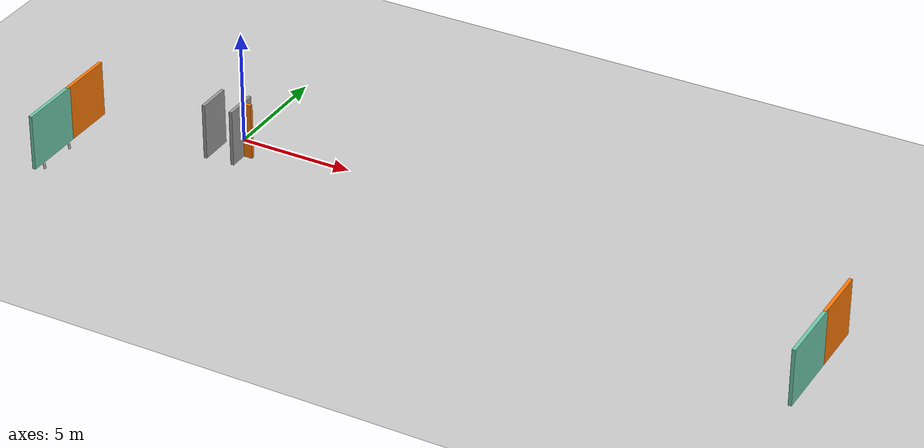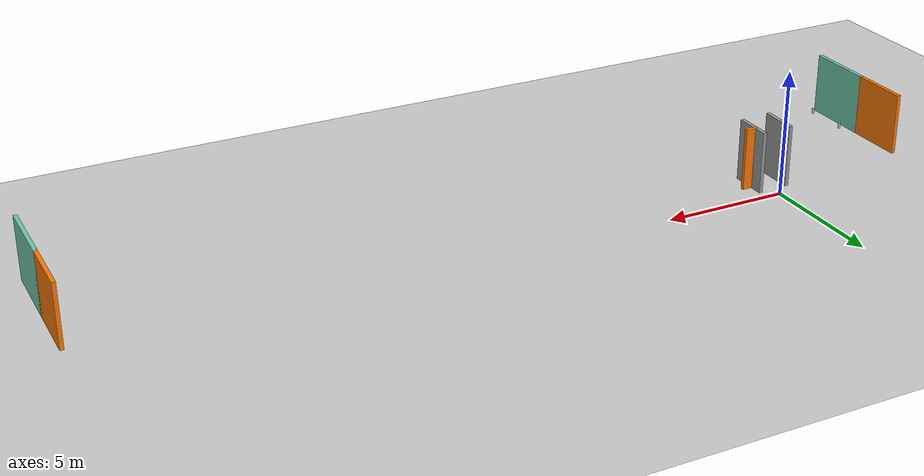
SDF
<sdf version="1.6">
 <world name="default">
  <model name="ground_plane">
   <static>1</static>
   <link name="link">
    <collision name="collision">
     <geometry><plane><normal>0 0 1</normal><size>100 100</size></plane></geometry>
     <surface>
      <contact><collide_bitmask>65535</collide_bitmask></contact>
      <friction><ode><mu>100</mu><mu2>50</mu2></ode></friction>
     </surface>
    </collision>
    <visual name="visual">
     <cast_shadows>0</cast_shadows>
     <geometry><plane><normal>0 0 1</normal><size>100 100</size></plane></geometry>
     <material>
      <script><uri>file://media/materials/scripts/gazebo.material</uri><name>Gazebo/Grey</name></script>
     </material>
    </visual>
   </link>
  </model>
  <model name="hhh">
   <pose>0.165 -1.21 0 0 -0 0</pose>
   <link name="Wall_0">
    <collision name="Wall_0_Collision">
     <geometry><box><size>1.5 0.15 2.5</size></box></geometry>
     <pose>0 0 1.25 0 -0 0</pose>
    </collision>
    <visual name="Wall_0_Visual">
     <pose>0 0 1.25 0 -0 0</pose>
     <geometry><box><size>1.5 0.15 2.5</size></box></geometry>
     <material>
      <script><uri>file://media/materials/scripts/gazebo.material</uri><name>Gazebo/Grey</name></script>
      <ambient>1 1 1 1</ambient>
     </material>
     <meta><layer>0</layer></meta>
    </visual>
    <pose>0.435 0.035 0 0 -0 -1.5708</pose>
   </link>
   <link name="Wall_2">
    <collision name="Wall_2_Collision">
     <geometry><box><size>0.5 0.15 2.5</size></box></geometry>
     <pose>0 0 1.25 0 -0 0</pose>
    </collision>
    <visual name="Wall_2_Visual">
     <pose>0 0 1.25 0 -0 0</pose>
     <geometry><box><size>0.5 0.15 2.5</size></box></geometry>
     <material>
      <script><uri>file://media/materials/scripts/gazebo.material</uri><name>Gazebo/Grey</name></script>
      <ambient>0.996078 0.47451 0.0196078 1</ambient>
     </material>
     <meta><layer>0</layer></meta>
    </visual>
    <pose>0.64 0.18 0 0 -0 0</pose>
   </link>
   <link name="Wall_4">
    <collision name="Wall_4_Collision">
     <geometry><box><size>1.5 0.15 2.5</size></box></geometry>
     <pose>0 0 1.25 0 -0 0</pose>
    </collision>
    <visual name="Wall_4_Visual">
     <pose>0 0 1.25 0 -0 0</pose>
     <geometry><box><size>1.5 0.15 2.5</size></box></geometry>
     <material>
      <script><uri>file://media/materials/scripts/gazebo.material</uri><name>Gazebo/Grey</name></script>
      <ambient>1 1 1 1</ambient>
     </material>
     <meta><layer>0</layer></meta>
    </visual>
    <pose>-0.815 -0.035 0 0 -0 1.5708</pose>
   </link>
   <static>1</static>
  </model>
  <model name="beer_9">
   <link name="link">
    <pose>0 0 0.115 0 -0 0</pose>
    <inertial>
     <mass>0.39</mass>
     <inertia><ixx>0.00058</ixx><ixy>0</ixy><ixz>0</ixz><iyy>0.00058</iyy><iyz>0</iyz><izz>0.00019</izz></inertia>
    </inertial>
    <collision name="collision">
     <geometry><cylinder><radius>0.055</radius><length>0.23</length></cylinder></geometry>
    </collision>
    <visual name="visual">
     <geometry><cylinder><radius>0.055</radius><length>0.23</length></cylinder></geometry>
     <material>
      <script>
       <uri>model://beer/materials/scripts</uri>
       <uri>model://beer/materials/textures</uri>
       <name>Beer/Diffuse</name>
      </script>
     </material>
    </visual>
   </link>
   <pose>-5.98358 -5.87954 -2e-06 1e-06 0 -1e-06</pose>
  </model>
  <model name="beer_14">
   <link name="link">
    <pose>0 0 0.115 0 -0 0</pose>
    <inertial>
     <mass>0.39</mass>
     <inertia><ixx>0.00058</ixx><ixy>0</ixy><ixz>0</ixz><iyy>0.00058</iyy><iyz>0</iyz><izz>0.00019</izz></inertia>
    </inertial>
    <collision name="collision">
     <geometry><cylinder><radius>0.055</radius><length>0.23</length></cylinder></geometry>
    </collision>
    <visual name="visual">
     <geometry><cylinder><radius>0.055</radius><length>0.23</length></cylinder></geometry>
     <material>
      <script>
       <uri>model://beer/materials/scripts</uri>
       <uri>model://beer/materials/textures</uri>
       <name>Beer/Diffuse</name>
      </script>
     </material>
    </visual>
   </link>
   <pose>-5.97751 -4.09592 -2e-06 1e-06 0 -1e-06</pose>
  </model>
  <model name="2tone">
   <pose>10.5566 -3.68884 0 0 -0 0</pose>
   <link name="Wall_0">
    <collision name="Wall_0_Collision">
     <geometry><box><size>2.5 0.15 2.5</size></box></geometry>
     <pose>0 0 1.25 0 -0 0</pose>
    </collision>
    <visual name="Wall_0_Visual">
     <pose>0 0 1.25 0 -0 0</pose>
     <geometry><box><size>2.5 0.15 2.5</size></box></geometry>
     <material>
      <script><uri>file://media/materials/scripts/gazebo.material</uri><name>Gazebo/Grey</name></script>
      <ambient>0.996078 0.47451 0.0196078 1</ambient>
     </material>
     <meta><layer>0</layer></meta>
    </visual>
    <pose>-16.8866 1.39384 0 0 -0 -1.5708</pose>
   </link>
   <link name="Wall_2">
    <collision name="Wall_2_Collision">
     <geometry><box><size>2.75 0.15 2.5</size></box></geometry>
     <pose>0 0 1.25 0 -0 0</pose>
    </collision>
    <visual name="Wall_2_Visual">
     <pose>0 0 1.25 0 -0 0</pose>
     <geometry><box><size>2.75 0.15 2.5</size></box></geometry>
     <material>
      <script><uri>file://media/materials/scripts/gazebo.material</uri><name>Gazebo/Grey</name></script>
      <ambient>0.435294 0.796078 0.67451 1</ambient>
     </material>
     <meta><layer>0</layer></meta>
    </visual>
    <pose>-16.8866 -1.08116 0 0 -0 -1.5708</pose>
   </link>
   <link name="Wall_4">
    <collision name="Wall_4_Collision">
     <geometry><box><size>2.5 0.15 2.5</size></box></geometry>
     <pose>0 0 1.25 0 -0 0</pose>
    </collision>
    <visual name="Wall_4_Visual">
     <pose>0 0 1.25 0 -0 0</pose>
     <geometry><box><size>2.5 0.15 2.5</size></box></geometry>
     <material>
      <script><uri>file://media/materials/scripts/gazebo.material</uri><name>Gazebo/Grey</name></script>
      <ambient>0.996078 0.47451 0.0196078 1</ambient>
     </material>
     <meta><layer>0</layer></meta>
    </visual>
    <pose>16.8866 1.425 0 0 -0 1.5708</pose>
   </link>
   <link name="Wall_6">
    <collision name="Wall_6_Collision">
     <geometry><box><size>3 0.15 2.5</size></box></geometry>
     <pose>0 0 1.25 0 -0 0</pose>
    </collision>
    <visual name="Wall_6_Visual">
     <pose>0 0 1.25 0 -0 0</pose>
     <geometry><box><size>3 0.15 2.5</size></box></geometry>
     <material>
      <script><uri>file://media/materials/scripts/gazebo.material</uri><name>Gazebo/Grey</name></script>
      <ambient>0.435294 0.796078 0.67451 1</ambient>
     </material>
     <meta><layer>0</layer></meta>
    </visual>
    <pose>16.8866 -1.175 0 0 -0 -1.5708</pose>
   </link>
   <static>1</static>
  </model>
 </world>
</sdf>
